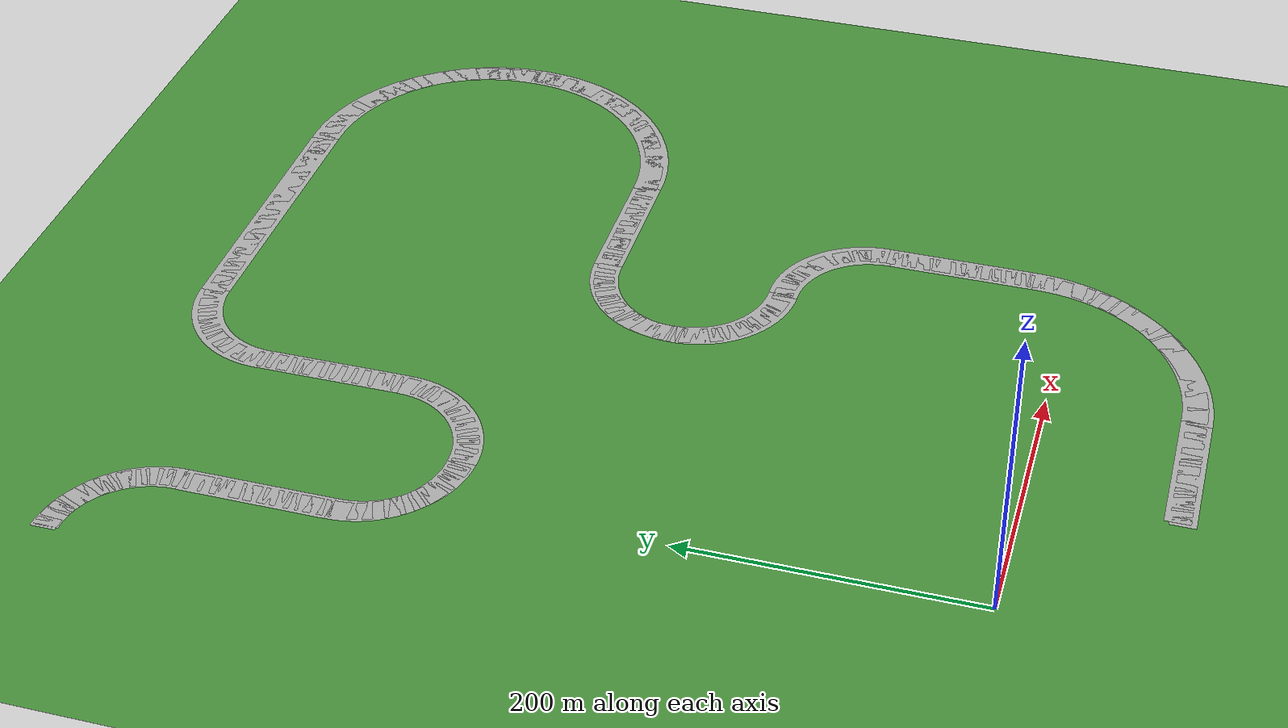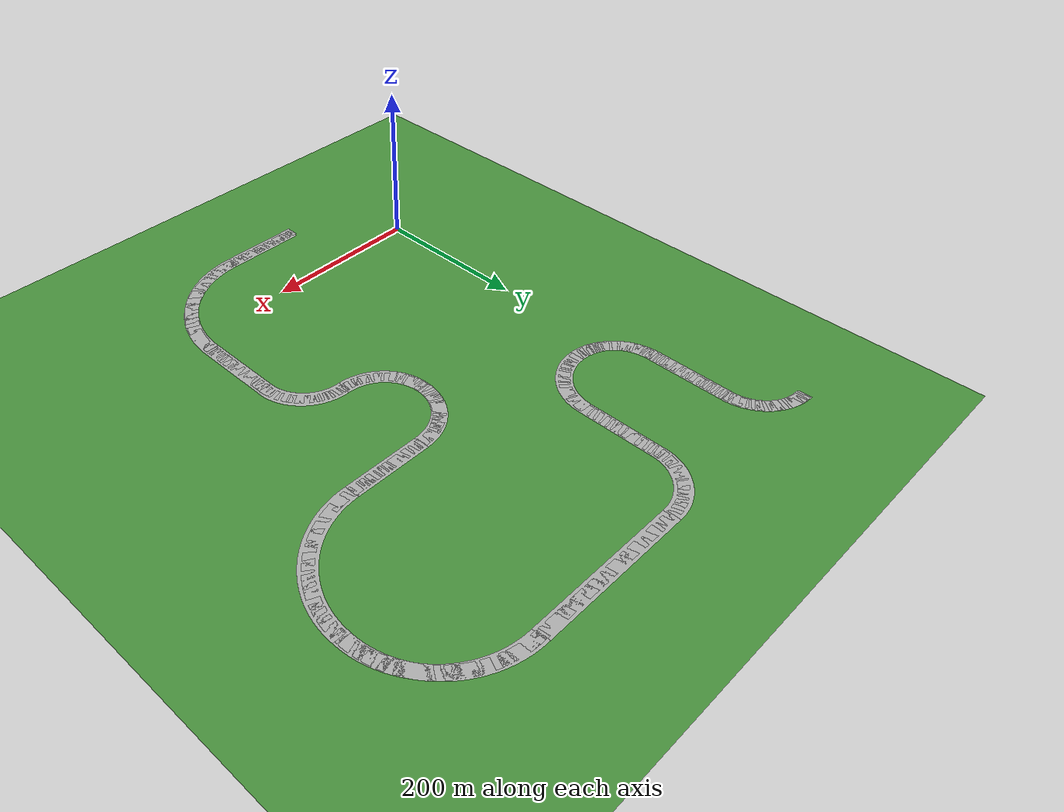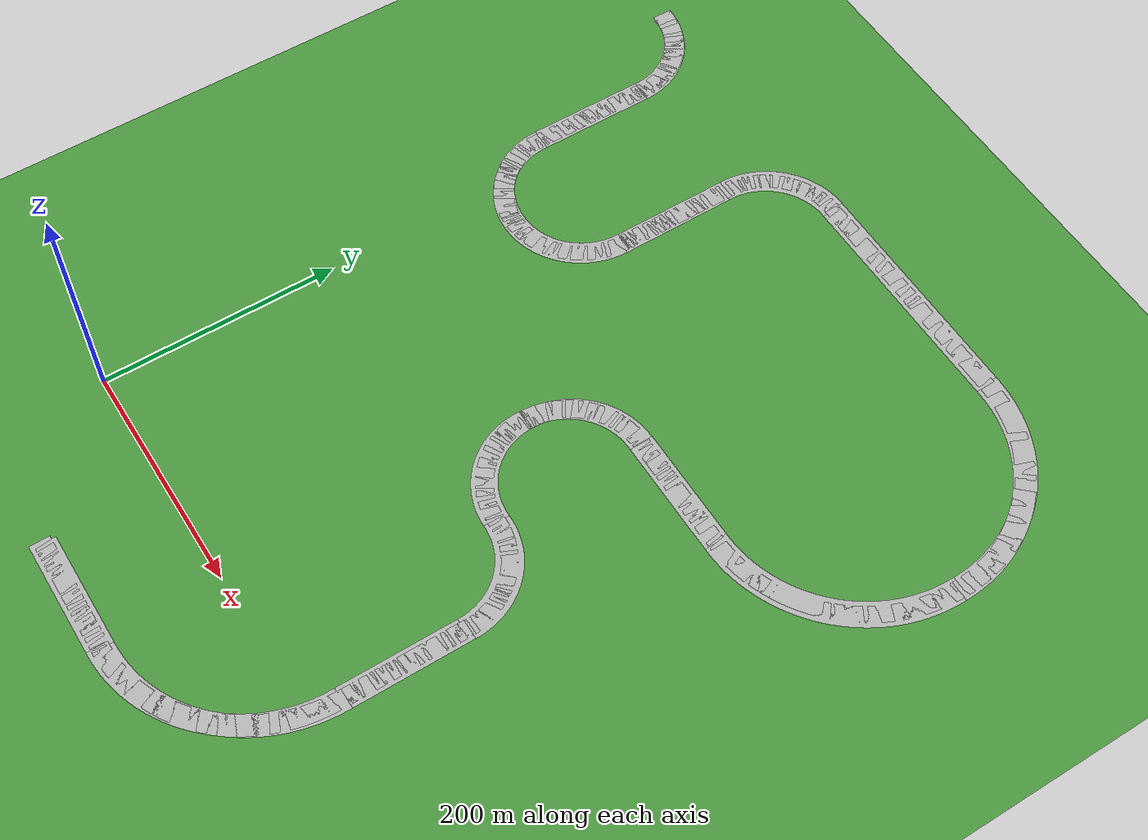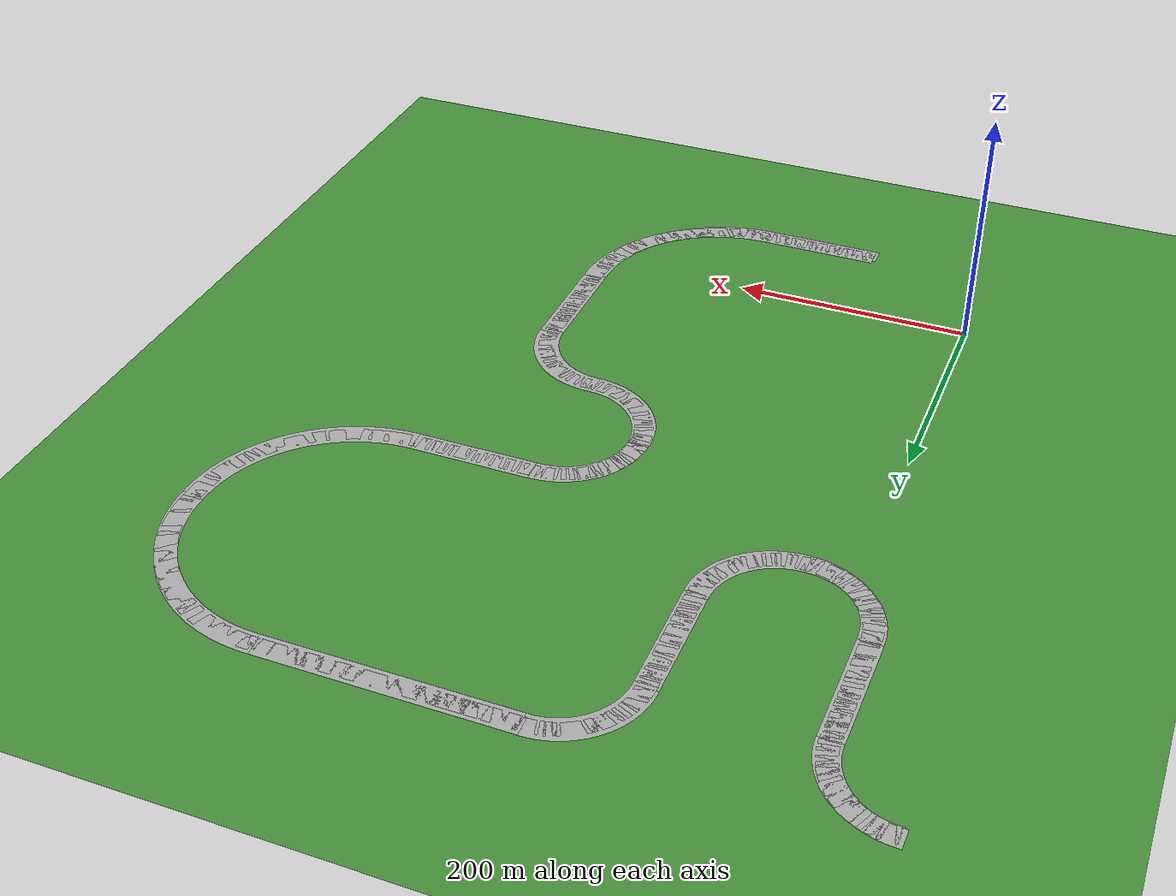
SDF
<sdf version="1.6">
 <world name="default">
  <model name="ground_plane">
   <pose>0 0 0 0 -0 3.14</pose>
   <static>1</static>
   <link name="link">
    <collision name="collision">
     <geometry><plane><normal>0 0 1</normal><size>100 100</size></plane></geometry>
     <surface><friction><ode><mu>100</mu><mu2>50</mu2></ode></friction></surface>
    </collision>
    <visual name="visual">
     <cast_shadows>0</cast_shadows>
     <geometry><plane><normal>0 0 1</normal><size>10000 10000</size></plane></geometry>
     <material>
      <script><uri>file://media/materials/scripts/ds_sim.material</uri><name>DSSim/GrassBackground</name></script>
     </material>
    </visual>
   </link>
  </model>
  <model name="straight100">
   <link name="link_0">
    <inertial>
     <mass>1</mass>
     <inertia>
      <ixx>0.166667</ixx>
      <ixy>0</ixy>
      <ixz>0</ixz>
      <iyy>0.166667</iyy>
      <iyz>0</iyz>
      <izz>0.166667</izz>
     </inertia>
    </inertial>
    <visual name="visual">
     <geometry><mesh><uri>/home/aws/Desktop/straight100.dae</uri><scale>1 1 1</scale></mesh></geometry>
    </visual>
    <collision name="collision">
     <geometry><mesh><uri>/home/aws/Desktop/straight100.dae</uri><scale>1 1 1</scale></mesh></geometry>
     <surface>
      <friction>
       <ode><mu>1</mu><mu2>1</mu2><fdir1>0 0 0</fdir1><slip1>0</slip1><slip2>0</slip2></ode>
       <torsional>
        <coefficient>1</coefficient>
        <patch_radius>0</patch_radius>
        <surface_radius>0</surface_radius>
        <use_patch_radius>1</use_patch_radius>
        <ode><slip>0</slip></ode>
       </torsional>
      </friction>
      <bounce><restitution_coefficient>0</restitution_coefficient><threshold>1e+06</threshold></bounce>
      <contact>
       <collide_without_contact>0</collide_without_contact>
       <collide_without_contact_bitmask>1</collide_without_contact_bitmask>
       <collide_bitmask>1</collide_bitmask>
       <ode>
        <soft_cfm>0</soft_cfm>
        <soft_erp>0.2</soft_erp>
        <kp>1e+13</kp>
        <kd>1</kd>
        <max_vel>0.01</max_vel>
        <min_depth>0</min_depth>
       </ode>
       <bullet>
        <split_impulse>1</split_impulse>
        <split_impulse_penetration_threshold>-0.01</split_impulse_penetration_threshold>
        <soft_cfm>0</soft_cfm>
        <soft_erp>0.2</soft_erp>
        <kp>1e+13</kp>
        <kd>1</kd>
       </bullet>
      </contact>
     </surface>
    </collision>
   </link>
   <static>1</static>
   <pose>104.925 -95.5492 0.05 0 -0 0</pose>
  </model>
  <model name="straight100_0">
   <link name="link_0">
    <inertial>
     <mass>1</mass>
     <inertia>
      <ixx>0.166667</ixx>
      <ixy>0</ixy>
      <ixz>0</ixz>
      <iyy>0.166667</iyy>
      <iyz>0</iyz>
      <izz>0.166667</izz>
     </inertia>
    </inertial>
    <visual name="visual">
     <geometry><mesh><uri>/home/aws/Desktop/straight100.dae</uri><scale>1 1 1</scale></mesh></geometry>
    </visual>
    <collision name="collision">
     <geometry><mesh><uri>/home/aws/Desktop/straight100.dae</uri><scale>1 1 1</scale></mesh></geometry>
     <surface>
      <friction>
       <ode><mu>1</mu><mu2>1</mu2><fdir1>0 0 0</fdir1><slip1>0</slip1><slip2>0</slip2></ode>
       <torsional>
        <coefficient>1</coefficient>
        <patch_radius>0</patch_radius>
        <surface_radius>0</surface_radius>
        <use_patch_radius>1</use_patch_radius>
        <ode><slip>0</slip></ode>
       </torsional>
      </friction>
      <bounce><restitution_coefficient>0</restitution_coefficient><threshold>1e+06</threshold></bounce>
      <contact>
       <collide_without_contact>0</collide_without_contact>
       <collide_without_contact_bitmask>1</collide_without_contact_bitmask>
       <collide_bitmask>1</collide_bitmask>
       <ode>
        <soft_cfm>0</soft_cfm>
        <soft_erp>0.2</soft_erp>
        <kp>1e+13</kp>
        <kd>1</kd>
        <max_vel>0.01</max_vel>
        <min_depth>0</min_depth>
       </ode>
       <bullet>
        <split_impulse>1</split_impulse>
        <split_impulse_penetration_threshold>-0.01</split_impulse_penetration_threshold>
        <soft_cfm>0</soft_cfm>
        <soft_erp>0.2</soft_erp>
        <kp>1e+13</kp>
        <kd>1</kd>
       </bullet>
      </contact>
     </surface>
    </collision>
   </link>
   <static>1</static>
   <pose>331.13 31.7233 0.05 0 -0 1.57</pose>
  </model>
  <model name="curve200_L">
   <static>1</static>
   <link name="link">
    <inertial>
     <mass>1</mass>
     <inertia><ixx>1</ixx><iyy>1</iyy><izz>1</izz><ixy>0</ixy><ixz>0</ixz><iyz>0</iyz></inertia>
    </inertial>
    <collision name="collision">
     <geometry><mesh><uri>/home/aws/Desktop/curve200_L.dae</uri></mesh></geometry>
    </collision>
    <visual name="visual"><geometry><mesh><uri>/home/aws/Desktop/curve200_L.dae</uri></mesh></geometry></visual>
   </link>
   <pose>204.817 -96.9381 0.05 0 -0 0</pose>
  </model>
  <model name="curve100_L">
   <static>1</static>
   <link name="link">
    <inertial>
     <mass>1</mass>
     <inertia><ixx>1</ixx><iyy>1</iyy><izz>1</izz><ixy>0</ixy><ixz>0</ixz><iyz>0</iyz></inertia>
    </inertial>
    <collision name="collision">
     <geometry><mesh><uri>/home/aws/Desktop/curve100_L.dae</uri></mesh></geometry>
    </collision>
    <visual name="visual"><geometry><mesh><uri>/home/aws/Desktop/curve100_L.dae</uri></mesh></geometry></visual>
   </link>
   <pose>331.812 131.589 0.05 0 -0 1.57</pose>
  </model>
  <model name="curve100_R">
   <static>1</static>
   <link name="link">
    <inertial>
     <mass>1</mass>
     <inertia><ixx>1</ixx><iyy>1</iyy><izz>1</izz><ixy>0</ixy><ixz>0</ixz><iyz>0</iyz></inertia>
    </inertial>
    <collision name="collision">
     <geometry><mesh><uri>/home/aws/Desktop/curve100_R.dae</uri></mesh></geometry>
    </collision>
    <visual name="visual"><geometry><mesh><uri>/home/aws/Desktop/curve100_R.dae</uri></mesh></geometry></visual>
   </link>
   <pose>267.553 195.005 0.05 0 0 -3.11173</pose>
  </model>
  <model name="curve100_R_0">
   <static>1</static>
   <link name="link">
    <inertial>
     <mass>1</mass>
     <inertia><ixx>1</ixx><iyy>1</iyy><izz>1</izz><ixy>0</ixy><ixz>0</ixz><iyz>0</iyz></inertia>
    </inertial>
    <collision name="collision">
     <geometry><mesh><uri>/home/aws/Desktop/curve100_R.dae</uri></mesh></geometry>
    </collision>
    <visual name="visual"><geometry><mesh><uri>/home/aws/Desktop/curve100_R.dae</uri></mesh></geometry></visual>
   </link>
   <pose>204.052 257.367 0.05 0 -0 1.59756</pose>
  </model>
  <model name="straight100_1">
   <link name="link_0">
    <inertial>
     <mass>1</mass>
     <inertia>
      <ixx>0.166667</ixx>
      <ixy>0</ixy>
      <ixz>0</ixz>
      <iyy>0.166667</iyy>
      <iyz>0</iyz>
      <izz>0.166667</izz>
     </inertia>
    </inertial>
    <visual name="visual">
     <geometry><mesh><uri>/home/aws/Desktop/straight100.dae</uri><scale>1 1 1</scale></mesh></geometry>
    </visual>
    <collision name="collision">
     <geometry><mesh><uri>/home/aws/Desktop/straight100.dae</uri><scale>1 1 1</scale></mesh></geometry>
     <surface>
      <friction>
       <ode><mu>1</mu><mu2>1</mu2><fdir1>0 0 0</fdir1><slip1>0</slip1><slip2>0</slip2></ode>
       <torsional>
        <coefficient>1</coefficient>
        <patch_radius>0</patch_radius>
        <surface_radius>0</surface_radius>
        <use_patch_radius>1</use_patch_radius>
        <ode><slip>0</slip></ode>
       </torsional>
      </friction>
      <bounce><restitution_coefficient>0</restitution_coefficient><threshold>1e+06</threshold></bounce>
      <contact>
       <collide_without_contact>0</collide_without_contact>
       <collide_without_contact_bitmask>1</collide_without_contact_bitmask>
       <collide_bitmask>1</collide_bitmask>
       <ode>
        <soft_cfm>0</soft_cfm>
        <soft_erp>0.2</soft_erp>
        <kp>1e+13</kp>
        <kd>1</kd>
        <max_vel>0.01</max_vel>
        <min_depth>0</min_depth>
       </ode>
       <bullet>
        <split_impulse>1</split_impulse>
        <split_impulse_penetration_threshold>-0.01</split_impulse_penetration_threshold>
        <soft_cfm>0</soft_cfm>
        <soft_erp>0.2</soft_erp>
        <kp>1e+13</kp>
        <kd>1</kd>
       </bullet>
      </contact>
     </surface>
    </collision>
   </link>
   <static>1</static>
   <pose>266.582 321.304 0.05 0 -0 0</pose>
  </model>
  <model name="curve200_L_0">
   <static>1</static>
   <link name="link">
    <inertial>
     <mass>1</mass>
     <inertia><ixx>1</ixx><iyy>1</iyy><izz>1</izz><ixy>0</ixy><ixz>0</ixz><iyz>0</iyz></inertia>
    </inertial>
    <collision name="collision">
     <geometry><mesh><uri>/home/aws/Desktop/curve200_L.dae</uri></mesh></geometry>
    </collision>
    <visual name="visual"><geometry><mesh><uri>/home/aws/Desktop/curve200_L.dae</uri></mesh></geometry></visual>
   </link>
   <pose>364.798 319.895 0.05 0 -0 0</pose>
  </model>
  <model name="curve200_L_1">
   <static>1</static>
   <link name="link">
    <inertial>
     <mass>1</mass>
     <inertia><ixx>1</ixx><iyy>1</iyy><izz>1</izz><ixy>0</ixy><ixz>0</ixz><iyz>0</iyz></inertia>
    </inertial>
    <collision name="collision">
     <geometry><mesh><uri>/home/aws/Desktop/curve200_L.dae</uri></mesh></geometry>
    </collision>
    <visual name="visual"><geometry><mesh><uri>/home/aws/Desktop/curve200_L.dae</uri></mesh></geometry></visual>
   </link>
   <pose>492.497 448.584 0.05 0 -0 1.57</pose>
  </model>
  <model name="straight200_0">
   <link name="link_0">
    <inertial>
     <mass>1</mass>
     <inertia>
      <ixx>0.166667</ixx>
      <ixy>0</ixy>
      <ixz>0</ixz>
      <iyy>0.166667</iyy>
      <iyz>0</iyz>
      <izz>0.166667</izz>
     </inertia>
    </inertial>
    <visual name="visual">
     <geometry><mesh><uri>/home/aws/Desktop/straight200.dae</uri><scale>1 1 1</scale></mesh></geometry>
    </visual>
    <collision name="collision">
     <geometry><mesh><uri>/home/aws/Desktop/straight200.dae</uri><scale>1 1 1</scale></mesh></geometry>
     <surface>
      <friction>
       <ode><mu>1</mu><mu2>1</mu2><fdir1>0 0 0</fdir1><slip1>0</slip1><slip2>0</slip2></ode>
       <torsional>
        <coefficient>1</coefficient>
        <patch_radius>0</patch_radius>
        <surface_radius>0</surface_radius>
        <use_patch_radius>1</use_patch_radius>
        <ode><slip>0</slip></ode>
       </torsional>
      </friction>
      <bounce><restitution_coefficient>0</restitution_coefficient><threshold>1e+06</threshold></bounce>
      <contact>
       <collide_without_contact>0</collide_without_contact>
       <collide_without_contact_bitmask>1</collide_without_contact_bitmask>
       <collide_bitmask>1</collide_bitmask>
       <ode>
        <soft_cfm>0</soft_cfm>
        <soft_erp>0.2</soft_erp>
        <kp>1e+13</kp>
        <kd>1</kd>
        <max_vel>0.01</max_vel>
        <min_depth>0</min_depth>
       </ode>
       <bullet>
        <split_impulse>1</split_impulse>
        <split_impulse_penetration_threshold>-0.01</split_impulse_penetration_threshold>
        <soft_cfm>0</soft_cfm>
        <soft_erp>0.2</soft_erp>
        <kp>1e+13</kp>
        <kd>1</kd>
       </bullet>
      </contact>
     </surface>
    </collision>
   </link>
   <static>1</static>
   <pose>363.961 575.015 0.05 0 -0 3.14</pose>
  </model>
  <model name="curve100_L_0">
   <static>1</static>
   <link name="link">
    <inertial>
     <mass>1</mass>
     <inertia><ixx>1</ixx><iyy>1</iyy><izz>1</izz><ixy>0</ixy><ixz>0</ixz><iyz>0</iyz></inertia>
    </inertial>
    <collision name="collision">
     <geometry><mesh><uri>/home/aws/Desktop/curve100_L.dae</uri></mesh></geometry>
    </collision>
    <visual name="visual"><geometry><mesh><uri>/home/aws/Desktop/curve100_L.dae</uri></mesh></geometry></visual>
   </link>
   <pose>164.295 575.928 0.05 0 -0 3.14</pose>
  </model>
  <model name="straight100_2">
   <link name="link_0">
    <inertial>
     <mass>1</mass>
     <inertia>
      <ixx>0.166667</ixx>
      <ixy>0</ixy>
      <ixz>0</ixz>
      <iyy>0.166667</iyy>
      <iyz>0</iyz>
      <izz>0.166667</izz>
     </inertia>
    </inertial>
    <visual name="visual">
     <geometry><mesh><uri>/home/aws/Desktop/straight100.dae</uri><scale>1 1 1</scale></mesh></geometry>
    </visual>
    <collision name="collision">
     <geometry><mesh><uri>/home/aws/Desktop/straight100.dae</uri><scale>1 1 1</scale></mesh></geometry>
     <surface>
      <friction>
       <ode><mu>1</mu><mu2>1</mu2><fdir1>0 0 0</fdir1><slip1>0</slip1><slip2>0</slip2></ode>
       <torsional>
        <coefficient>1</coefficient>
        <patch_radius>0</patch_radius>
        <surface_radius>0</surface_radius>
        <use_patch_radius>1</use_patch_radius>
        <ode><slip>0</slip></ode>
       </torsional>
      </friction>
      <bounce><restitution_coefficient>0</restitution_coefficient><threshold>1e+06</threshold></bounce>
      <contact>
       <collide_without_contact>0</collide_without_contact>
       <collide_without_contact_bitmask>1</collide_without_contact_bitmask>
       <collide_bitmask>1</collide_bitmask>
       <ode>
        <soft_cfm>0</soft_cfm>
        <soft_erp>0.2</soft_erp>
        <kp>1e+13</kp>
        <kd>1</kd>
        <max_vel>0.01</max_vel>
        <min_depth>0</min_depth>
       </ode>
       <bullet>
        <split_impulse>1</split_impulse>
        <split_impulse_penetration_threshold>-0.01</split_impulse_penetration_threshold>
        <soft_cfm>0</soft_cfm>
        <soft_erp>0.2</soft_erp>
        <kp>1e+13</kp>
        <kd>1</kd>
       </bullet>
      </contact>
     </surface>
    </collision>
   </link>
   <static>1</static>
   <pose>101.463 511.908 0.05 0 0 -1.57</pose>
  </model>
  <model name="curve100_R_1">
   <static>1</static>
   <link name="link">
    <inertial>
     <mass>1</mass>
     <inertia><ixx>1</ixx><iyy>1</iyy><izz>1</izz><ixy>0</ixy><ixz>0</ixz><iyz>0</iyz></inertia>
    </inertial>
    <collision name="collision">
     <geometry><mesh><uri>/home/aws/Desktop/curve100_R.dae</uri></mesh></geometry>
    </collision>
    <visual name="visual"><geometry><mesh><uri>/home/aws/Desktop/curve100_R.dae</uri></mesh></geometry></visual>
   </link>
   <pose>100.907 411.93 0.05 0 0 -1.5463</pose>
  </model>
  <model name="curve100_R_2">
   <static>1</static>
   <link name="link">
    <inertial>
     <mass>1</mass>
     <inertia><ixx>1</ixx><iyy>1</iyy><izz>1</izz><ixy>0</ixy><ixz>0</ixz><iyz>0</iyz></inertia>
    </inertial>
    <collision name="collision">
     <geometry><mesh><uri>/home/aws/Desktop/curve100_R.dae</uri></mesh></geometry>
    </collision>
    <visual name="visual"><geometry><mesh><uri>/home/aws/Desktop/curve100_R.dae</uri></mesh></geometry></visual>
   </link>
   <pose>38.1624 348.751 0.05 0 0 -3.11898</pose>
  </model>
  <model name="straight100_3">
   <link name="link_0">
    <inertial>
     <mass>1</mass>
     <inertia>
      <ixx>0.166667</ixx>
      <ixy>0</ixy>
      <ixz>0</ixz>
      <iyy>0.166667</iyy>
      <iyz>0</iyz>
      <izz>0.166667</izz>
     </inertia>
    </inertial>
    <visual name="visual">
     <geometry><mesh><uri>/home/aws/Desktop/straight100.dae</uri><scale>1 1 1</scale></mesh></geometry>
    </visual>
    <collision name="collision">
     <geometry><mesh><uri>/home/aws/Desktop/straight100.dae</uri><scale>1 1 1</scale></mesh></geometry>
     <surface>
      <friction>
       <ode><mu>1</mu><mu2>1</mu2><fdir1>0 0 0</fdir1><slip1>0</slip1><slip2>0</slip2></ode>
       <torsional>
        <coefficient>1</coefficient>
        <patch_radius>0</patch_radius>
        <surface_radius>0</surface_radius>
        <use_patch_radius>1</use_patch_radius>
        <ode><slip>0</slip></ode>
       </torsional>
      </friction>
      <bounce><restitution_coefficient>0</restitution_coefficient><threshold>1e+06</threshold></bounce>
      <contact>
       <collide_without_contact>0</collide_without_contact>
       <collide_without_contact_bitmask>1</collide_without_contact_bitmask>
       <collide_bitmask>1</collide_bitmask>
       <ode>
        <soft_cfm>0</soft_cfm>
        <soft_erp>0.2</soft_erp>
        <kp>1e+13</kp>
        <kd>1</kd>
        <max_vel>0.01</max_vel>
        <min_depth>0</min_depth>
       </ode>
       <bullet>
        <split_impulse>1</split_impulse>
        <split_impulse_penetration_threshold>-0.01</split_impulse_penetration_threshold>
        <soft_cfm>0</soft_cfm>
        <soft_erp>0.2</soft_erp>
        <kp>1e+13</kp>
        <kd>1</kd>
       </bullet>
      </contact>
     </surface>
    </collision>
   </link>
   <static>1</static>
   <pose>-25.5193 411.604 0.05 0 -0 1.57</pose>
  </model>
  <model name="curve100_L_1">
   <static>1</static>
   <link name="link">
    <inertial>
     <mass>1</mass>
     <inertia><ixx>1</ixx><iyy>1</iyy><izz>1</izz><ixy>0</ixy><ixz>0</ixz><iyz>0</iyz></inertia>
    </inertial>
    <collision name="collision">
     <geometry><mesh><uri>/home/aws/Desktop/curve100_L.dae</uri></mesh></geometry>
    </collision>
    <visual name="visual"><geometry><mesh><uri>/home/aws/Desktop/curve100_L.dae</uri></mesh></geometry></visual>
   </link>
   <pose>-24.8107 511.511 0.05 0 -0 1.56339</pose>
  </model>
  <model name="straight100_5">
   <link name="link_1">
    <inertial>
     <mass>1</mass>
     <inertia>
      <ixx>0.166667</ixx>
      <ixy>0</ixy>
      <ixz>0</ixz>
      <iyy>0.166667</iyy>
      <iyz>0</iyz>
      <izz>0.166667</izz>
     </inertia>
    </inertial>
    <visual name="visual">
     <geometry>
      <mesh>
       <uri>/home/aws/oscar/catkin_ws/src/fusion/aws_models/blender_files/straight100.dae</uri>
       <scale>1 1 1</scale>
      </mesh>
     </geometry>
    </visual>
    <collision name="collision">
     <geometry>
      <mesh>
       <uri>/home/aws/oscar/catkin_ws/src/fusion/aws_models/blender_files/straight100.dae</uri>
       <scale>1 1 1</scale>
      </mesh>
     </geometry>
     <surface>
      <friction>
       <ode><mu>1</mu><mu2>1</mu2><fdir1>0 0 0</fdir1><slip1>0</slip1><slip2>0</slip2></ode>
       <torsional>
        <coefficient>1</coefficient>
        <patch_radius>0</patch_radius>
        <surface_radius>0</surface_radius>
        <use_patch_radius>1</use_patch_radius>
        <ode><slip>0</slip></ode>
       </torsional>
      </friction>
      <bounce><restitution_coefficient>0</restitution_coefficient><threshold>1e+06</threshold></bounce>
      <contact>
       <collide_without_contact>0</collide_without_contact>
       <collide_without_contact_bitmask>1</collide_without_contact_bitmask>
       <collide_bitmask>1</collide_bitmask>
       <ode>
        <soft_cfm>0</soft_cfm>
        <soft_erp>0.2</soft_erp>
        <kp>1e+13</kp>
        <kd>1</kd>
        <max_vel>0.01</max_vel>
        <min_depth>0</min_depth>
       </ode>
       <bullet>
        <split_impulse>1</split_impulse>
        <split_impulse_penetration_threshold>-0.01</split_impulse_penetration_threshold>
        <soft_cfm>0</soft_cfm>
        <soft_erp>0.2</soft_erp>
        <kp>1e+13</kp>
        <kd>1</kd>
       </bullet>
      </contact>
     </surface>
    </collision>
   </link>
   <static>1</static>
   <pose>102.27 -99.058 0.05 0 -0 0</pose>
  </model>
  <model name="curve200_L_5">
   <static>1</static>
   <link name="link">
    <inertial>
     <mass>1</mass>
     <inertia><ixx>1</ixx><iyy>1</iyy><izz>1</izz><ixy>0</ixy><ixz>0</ixz><iyz>0</iyz></inertia>
    </inertial>
    <collision name="collision">
     <geometry>
      <mesh><uri>/home/aws/oscar/catkin_ws/src/fusion/aws_models/blender_files/curve200_L.dae</uri></mesh>
     </geometry>
    </collision>
    <visual name="visual">
     <geometry>
      <mesh><uri>/home/aws/oscar/catkin_ws/src/fusion/aws_models/blender_files/curve200_L.dae</uri></mesh>
     </geometry>
    </visual>
   </link>
   <pose>201.929 -100.432 0.05 0 -0 0</pose>
  </model>
  <model name="straight100_7">
   <link name="link_1">
    <inertial>
     <mass>1</mass>
     <inertia>
      <ixx>0.166667</ixx>
      <ixy>0</ixy>
      <ixz>0</ixz>
      <iyy>0.166667</iyy>
      <iyz>0</iyz>
      <izz>0.166667</izz>
     </inertia>
    </inertial>
    <visual name="visual">
     <geometry>
      <mesh>
       <uri>/home/aws/oscar/catkin_ws/src/fusion/aws_models/blender_files/straight100.dae</uri>
       <scale>1 1 1</scale>
      </mesh>
     </geometry>
    </visual>
    <collision name="collision">
     <geometry>
      <mesh>
       <uri>/home/aws/oscar/catkin_ws/src/fusion/aws_models/blender_files/straight100.dae</uri>
       <scale>1 1 1</scale>
      </mesh>
     </geometry>
     <surface>
      <friction>
       <ode><mu>1</mu><mu2>1</mu2><fdir1>0 0 0</fdir1><slip1>0</slip1><slip2>0</slip2></ode>
       <torsional>
        <coefficient>1</coefficient>
        <patch_radius>0</patch_radius>
        <surface_radius>0</surface_radius>
        <use_patch_radius>1</use_patch_radius>
        <ode><slip>0</slip></ode>
       </torsional>
      </friction>
      <bounce><restitution_coefficient>0</restitution_coefficient><threshold>1e+06</threshold></bounce>
      <contact>
       <collide_without_contact>0</collide_without_contact>
       <collide_without_contact_bitmask>1</collide_without_contact_bitmask>
       <collide_bitmask>1</collide_bitmask>
       <ode>
        <soft_cfm>0</soft_cfm>
        <soft_erp>0.2</soft_erp>
        <kp>1e+13</kp>
        <kd>1</kd>
        <max_vel>0.01</max_vel>
        <min_depth>0</min_depth>
       </ode>
       <bullet>
        <split_impulse>1</split_impulse>
        <split_impulse_penetration_threshold>-0.01</split_impulse_penetration_threshold>
        <soft_cfm>0</soft_cfm>
        <soft_erp>0.2</soft_erp>
        <kp>1e+13</kp>
        <kd>1</kd>
       </bullet>
      </contact>
     </surface>
    </collision>
   </link>
   <static>1</static>
   <pose>328.171 28.1962 0.05 0 -0 1.57</pose>
  </model>
  <model name="curve100_L_3">
   <static>1</static>
   <link name="link">
    <inertial>
     <mass>1</mass>
     <inertia><ixx>1</ixx><iyy>1</iyy><izz>1</izz><ixy>0</ixy><ixz>0</ixz><iyz>0</iyz></inertia>
    </inertial>
    <collision name="collision">
     <geometry>
      <mesh><uri>/home/aws/oscar/catkin_ws/src/fusion/aws_models/blender_files/curve100_L.dae</uri></mesh>
     </geometry>
    </collision>
    <visual name="visual">
     <geometry>
      <mesh><uri>/home/aws/oscar/catkin_ws/src/fusion/aws_models/blender_files/curve100_L.dae</uri></mesh>
     </geometry>
    </visual>
   </link>
   <pose>328.747 128.131 0.05 0 -0 1.57</pose>
  </model>
  <model name="curve100_R_5">
   <static>1</static>
   <link name="link">
    <inertial>
     <mass>1</mass>
     <inertia><ixx>1</ixx><iyy>1</iyy><izz>1</izz><ixy>0</ixy><ixz>0</ixz><iyz>0</iyz></inertia>
    </inertial>
    <collision name="collision">
     <geometry>
      <mesh><uri>/home/aws/oscar/catkin_ws/src/fusion/aws_models/blender_files/curve100_R.dae</uri></mesh>
     </geometry>
    </collision>
    <visual name="visual">
     <geometry>
      <mesh><uri>/home/aws/oscar/catkin_ws/src/fusion/aws_models/blender_files/curve100_R.dae</uri></mesh>
     </geometry>
    </visual>
   </link>
   <pose>264.794 191.494 0.05 0 -0 3.14</pose>
  </model>
  <model name="curve100_R_6">
   <static>1</static>
   <link name="link">
    <inertial>
     <mass>1</mass>
     <inertia><ixx>1</ixx><iyy>1</iyy><izz>1</izz><ixy>0</ixy><ixz>0</ixz><iyz>0</iyz></inertia>
    </inertial>
    <collision name="collision">
     <geometry>
      <mesh><uri>/home/aws/oscar/catkin_ws/src/fusion/aws_models/blender_files/curve100_R.dae</uri></mesh>
     </geometry>
    </collision>
    <visual name="visual">
     <geometry>
      <mesh><uri>/home/aws/oscar/catkin_ws/src/fusion/aws_models/blender_files/curve100_R.dae</uri></mesh>
     </geometry>
    </visual>
   </link>
   <pose>203.316 255.888 0.05 0 -0 1.57</pose>
  </model>
  <model name="straight100_8">
   <link name="link_1">
    <inertial>
     <mass>1</mass>
     <inertia>
      <ixx>0.166667</ixx>
      <ixy>0</ixy>
      <ixz>0</ixz>
      <iyy>0.166667</iyy>
      <iyz>0</iyz>
      <izz>0.166667</izz>
     </inertia>
    </inertial>
    <visual name="visual">
     <geometry>
      <mesh>
       <uri>/home/aws/oscar/catkin_ws/src/fusion/aws_models/blender_files/straight100.dae</uri>
       <scale>1 1 1</scale>
      </mesh>
     </geometry>
    </visual>
    <collision name="collision">
     <geometry>
      <mesh>
       <uri>/home/aws/oscar/catkin_ws/src/fusion/aws_models/blender_files/straight100.dae</uri>
       <scale>1 1 1</scale>
      </mesh>
     </geometry>
     <surface>
      <friction>
       <ode><mu>1</mu><mu2>1</mu2><fdir1>0 0 0</fdir1><slip1>0</slip1><slip2>0</slip2></ode>
       <torsional>
        <coefficient>1</coefficient>
        <patch_radius>0</patch_radius>
        <surface_radius>0</surface_radius>
        <use_patch_radius>1</use_patch_radius>
        <ode><slip>0</slip></ode>
       </torsional>
      </friction>
      <bounce><restitution_coefficient>0</restitution_coefficient><threshold>1e+06</threshold></bounce>
      <contact>
       <collide_without_contact>0</collide_without_contact>
       <collide_without_contact_bitmask>1</collide_without_contact_bitmask>
       <collide_bitmask>1</collide_bitmask>
       <ode>
        <soft_cfm>0</soft_cfm>
        <soft_erp>0.2</soft_erp>
        <kp>1e+13</kp>
        <kd>1</kd>
        <max_vel>0.01</max_vel>
        <min_depth>0</min_depth>
       </ode>
       <bullet>
        <split_impulse>1</split_impulse>
        <split_impulse_penetration_threshold>-0.01</split_impulse_penetration_threshold>
        <soft_cfm>0</soft_cfm>
        <soft_erp>0.2</soft_erp>
        <kp>1e+13</kp>
        <kd>1</kd>
       </bullet>
      </contact>
     </surface>
    </collision>
   </link>
   <static>1</static>
   <pose>267.529 317.958 0.05 0 -0 0</pose>
  </model>
  <model name="curve200_L_6">
   <static>1</static>
   <link name="link">
    <inertial>
     <mass>1</mass>
     <inertia><ixx>1</ixx><iyy>1</iyy><izz>1</izz><ixy>0</ixy><ixz>0</ixz><iyz>0</iyz></inertia>
    </inertial>
    <collision name="collision">
     <geometry>
      <mesh><uri>/home/aws/oscar/catkin_ws/src/fusion/aws_models/blender_files/curve200_L.dae</uri></mesh>
     </geometry>
    </collision>
    <visual name="visual">
     <geometry>
      <mesh><uri>/home/aws/oscar/catkin_ws/src/fusion/aws_models/blender_files/curve200_L.dae</uri></mesh>
     </geometry>
    </visual>
   </link>
   <pose>367.262 316.563 0.05 0 -0 0</pose>
  </model>
  <model name="curve200_L_7">
   <static>1</static>
   <link name="link">
    <inertial>
     <mass>1</mass>
     <inertia><ixx>1</ixx><iyy>1</iyy><izz>1</izz><ixy>0</ixy><ixz>0</ixz><iyz>0</iyz></inertia>
    </inertial>
    <collision name="collision">
     <geometry>
      <mesh><uri>/home/aws/oscar/catkin_ws/src/fusion/aws_models/blender_files/curve200_L.dae</uri></mesh>
     </geometry>
    </collision>
    <visual name="visual">
     <geometry>
      <mesh><uri>/home/aws/oscar/catkin_ws/src/fusion/aws_models/blender_files/curve200_L.dae</uri></mesh>
     </geometry>
    </visual>
   </link>
   <pose>494.879 445.08 0.05 0 -0 1.57</pose>
  </model>
  <model name="straight200_3">
   <link name="link_0">
    <inertial>
     <mass>1</mass>
     <inertia>
      <ixx>0.166667</ixx>
      <ixy>0</ixy>
      <ixz>0</ixz>
      <iyy>0.166667</iyy>
      <iyz>0</iyz>
      <izz>0.166667</izz>
     </inertia>
    </inertial>
    <visual name="visual">
     <geometry>
      <mesh>
       <uri>/home/aws/oscar/catkin_ws/src/fusion/aws_models/blender_files/straight200.dae</uri>
       <scale>1 1 1</scale>
      </mesh>
     </geometry>
    </visual>
    <collision name="collision">
     <geometry>
      <mesh>
       <uri>/home/aws/oscar/catkin_ws/src/fusion/aws_models/blender_files/straight200.dae</uri>
       <scale>1 1 1</scale>
      </mesh>
     </geometry>
     <surface>
      <friction>
       <ode><mu>1</mu><mu2>1</mu2><fdir1>0 0 0</fdir1><slip1>0</slip1><slip2>0</slip2></ode>
       <torsional>
        <coefficient>1</coefficient>
        <patch_radius>0</patch_radius>
        <surface_radius>0</surface_radius>
        <use_patch_radius>1</use_patch_radius>
        <ode><slip>0</slip></ode>
       </torsional>
      </friction>
      <bounce><restitution_coefficient>0</restitution_coefficient><threshold>1e+06</threshold></bounce>
      <contact>
       <collide_without_contact>0</collide_without_contact>
       <collide_without_contact_bitmask>1</collide_without_contact_bitmask>
       <collide_bitmask>1</collide_bitmask>
       <ode>
        <soft_cfm>0</soft_cfm>
        <soft_erp>0.2</soft_erp>
        <kp>1e+13</kp>
        <kd>1</kd>
        <max_vel>0.01</max_vel>
        <min_depth>0</min_depth>
       </ode>
       <bullet>
        <split_impulse>1</split_impulse>
        <split_impulse_penetration_threshold>-0.01</split_impulse_penetration_threshold>
        <soft_cfm>0</soft_cfm>
        <soft_erp>0.2</soft_erp>
        <kp>1e+13</kp>
        <kd>1</kd>
       </bullet>
      </contact>
     </surface>
    </collision>
   </link>
   <static>1</static>
   <pose>366.314 571.437 0.05 0 -0 3.14</pose>
  </model>
  <model name="curve100_L_4">
   <static>1</static>
   <link name="link">
    <inertial>
     <mass>1</mass>
     <inertia><ixx>1</ixx><iyy>1</iyy><izz>1</izz><ixy>0</ixy><ixz>0</ixz><iyz>0</iyz></inertia>
    </inertial>
    <collision name="collision">
     <geometry>
      <mesh><uri>/home/aws/oscar/catkin_ws/src/fusion/aws_models/blender_files/curve100_L.dae</uri></mesh>
     </geometry>
    </collision>
    <visual name="visual">
     <geometry>
      <mesh><uri>/home/aws/oscar/catkin_ws/src/fusion/aws_models/blender_files/curve100_L.dae</uri></mesh>
     </geometry>
    </visual>
   </link>
   <pose>166.362 572.28 0.05 0 -0 3.14</pose>
  </model>
  <model name="straight100_9">
   <link name="link_1">
    <inertial>
     <mass>1</mass>
     <inertia>
      <ixx>0.166667</ixx>
      <ixy>0</ixy>
      <ixz>0</ixz>
      <iyy>0.166667</iyy>
      <iyz>0</iyz>
      <izz>0.166667</izz>
     </inertia>
    </inertial>
    <visual name="visual">
     <geometry>
      <mesh>
       <uri>/home/aws/oscar/catkin_ws/src/fusion/aws_models/blender_files/straight100.dae</uri>
       <scale>1 1 1</scale>
      </mesh>
     </geometry>
    </visual>
    <collision name="collision">
     <geometry>
      <mesh>
       <uri>/home/aws/oscar/catkin_ws/src/fusion/aws_models/blender_files/straight100.dae</uri>
       <scale>1 1 1</scale>
      </mesh>
     </geometry>
     <surface>
      <friction>
       <ode><mu>1</mu><mu2>1</mu2><fdir1>0 0 0</fdir1><slip1>0</slip1><slip2>0</slip2></ode>
       <torsional>
        <coefficient>1</coefficient>
        <patch_radius>0</patch_radius>
        <surface_radius>0</surface_radius>
        <use_patch_radius>1</use_patch_radius>
        <ode><slip>0</slip></ode>
       </torsional>
      </friction>
      <bounce><restitution_coefficient>0</restitution_coefficient><threshold>1e+06</threshold></bounce>
      <contact>
       <collide_without_contact>0</collide_without_contact>
       <collide_without_contact_bitmask>1</collide_without_contact_bitmask>
       <collide_bitmask>1</collide_bitmask>
       <ode>
        <soft_cfm>0</soft_cfm>
        <soft_erp>0.2</soft_erp>
        <kp>1e+13</kp>
        <kd>1</kd>
        <max_vel>0.01</max_vel>
        <min_depth>0</min_depth>
       </ode>
       <bullet>
        <split_impulse>1</split_impulse>
        <split_impulse_penetration_threshold>-0.01</split_impulse_penetration_threshold>
        <soft_cfm>0</soft_cfm>
        <soft_erp>0.2</soft_erp>
        <kp>1e+13</kp>
        <kd>1</kd>
       </bullet>
      </contact>
     </surface>
    </collision>
   </link>
   <static>1</static>
   <pose>103.489 508.124 0.05 0 0 -1.57</pose>
  </model>
  <model name="curve100_R_7">
   <static>1</static>
   <link name="link">
    <inertial>
     <mass>1</mass>
     <inertia><ixx>1</ixx><iyy>1</iyy><izz>1</izz><ixy>0</ixy><ixz>0</ixz><iyz>0</iyz></inertia>
    </inertial>
    <collision name="collision">
     <geometry>
      <mesh><uri>/home/aws/oscar/catkin_ws/src/fusion/aws_models/blender_files/curve100_R.dae</uri></mesh>
     </geometry>
    </collision>
    <visual name="visual">
     <geometry>
      <mesh><uri>/home/aws/oscar/catkin_ws/src/fusion/aws_models/blender_files/curve100_R.dae</uri></mesh>
     </geometry>
    </visual>
   </link>
   <pose>103.023 408.323 0.05 0 0 -1.57</pose>
  </model>
  <model name="curve100_R_8">
   <static>1</static>
   <link name="link">
    <inertial>
     <mass>1</mass>
     <inertia><ixx>1</ixx><iyy>1</iyy><izz>1</izz><ixy>0</ixy><ixz>0</ixz><iyz>0</iyz></inertia>
    </inertial>
    <collision name="collision">
     <geometry>
      <mesh><uri>/home/aws/oscar/catkin_ws/src/fusion/aws_models/blender_files/curve100_R.dae</uri></mesh>
     </geometry>
    </collision>
    <visual name="visual">
     <geometry>
      <mesh><uri>/home/aws/oscar/catkin_ws/src/fusion/aws_models/blender_files/curve100_R.dae</uri></mesh>
     </geometry>
    </visual>
   </link>
   <pose>38.8661 346.697 0.05 0 -0 3.14</pose>
  </model>
  <model name="straight100_10">
   <link name="link_1">
    <inertial>
     <mass>1</mass>
     <inertia>
      <ixx>0.166667</ixx>
      <ixy>0</ixy>
      <ixz>0</ixz>
      <iyy>0.166667</iyy>
      <iyz>0</iyz>
      <izz>0.166667</izz>
     </inertia>
    </inertial>
    <visual name="visual">
     <geometry>
      <mesh>
       <uri>/home/aws/oscar/catkin_ws/src/fusion/aws_models/blender_files/straight100.dae</uri>
       <scale>1 1 1</scale>
      </mesh>
     </geometry>
    </visual>
    <collision name="collision">
     <geometry>
      <mesh>
       <uri>/home/aws/oscar/catkin_ws/src/fusion/aws_models/blender_files/straight100.dae</uri>
       <scale>1 1 1</scale>
      </mesh>
     </geometry>
     <surface>
      <friction>
       <ode><mu>1</mu><mu2>1</mu2><fdir1>0 0 0</fdir1><slip1>0</slip1><slip2>0</slip2></ode>
       <torsional>
        <coefficient>1</coefficient>
        <patch_radius>0</patch_radius>
        <surface_radius>0</surface_radius>
        <use_patch_radius>1</use_patch_radius>
        <ode><slip>0</slip></ode>
       </torsional>
      </friction>
      <bounce><restitution_coefficient>0</restitution_coefficient><threshold>1e+06</threshold></bounce>
      <contact>
       <collide_without_contact>0</collide_without_contact>
       <collide_without_contact_bitmask>1</collide_without_contact_bitmask>
       <collide_bitmask>1</collide_bitmask>
       <ode>
        <soft_cfm>0</soft_cfm>
        <soft_erp>0.2</soft_erp>
        <kp>1e+13</kp>
        <kd>1</kd>
        <max_vel>0.01</max_vel>
        <min_depth>0</min_depth>
       </ode>
       <bullet>
        <split_impulse>1</split_impulse>
        <split_impulse_penetration_threshold>-0.01</split_impulse_penetration_threshold>
        <soft_cfm>0</soft_cfm>
        <soft_erp>0.2</soft_erp>
        <kp>1e+13</kp>
        <kd>1</kd>
       </bullet>
      </contact>
     </surface>
    </collision>
   </link>
   <static>1</static>
   <pose>-23.1447 410.946 0.05 0 -0 1.57</pose>
  </model>
  <model name="curve100_L_5">
   <static>1</static>
   <link name="link">
    <inertial>
     <mass>1</mass>
     <inertia><ixx>1</ixx><iyy>1</iyy><izz>1</izz><ixy>0</ixy><ixz>0</ixz><iyz>0</iyz></inertia>
    </inertial>
    <collision name="collision">
     <geometry>
      <mesh><uri>/home/aws/oscar/catkin_ws/src/fusion/aws_models/blender_files/curve100_L.dae</uri></mesh>
     </geometry>
    </collision>
    <visual name="visual">
     <geometry>
      <mesh><uri>/home/aws/oscar/catkin_ws/src/fusion/aws_models/blender_files/curve100_L.dae</uri></mesh>
     </geometry>
    </visual>
   </link>
   <pose>-22.5287 510.832 0.05 0 -0 1.57</pose>
  </model>
 </world>
</sdf>
